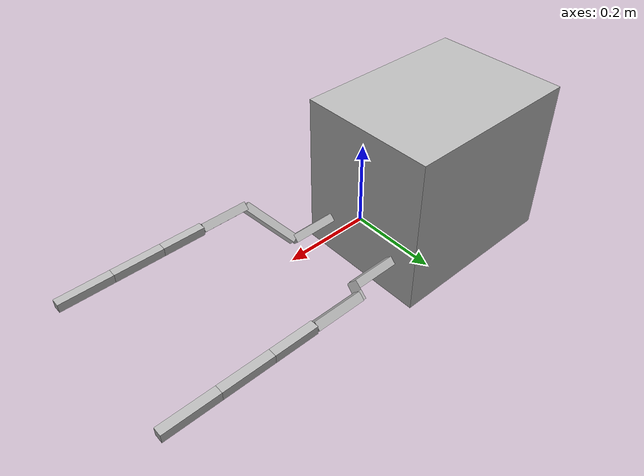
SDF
<?xml version="1.0" ?>
<sdf version="1.5">
  <model name="four_bar_sdf">
    <pose>0 0 0.04  0 0 0</pose>
    <self_collide>true</self_collide>
    <link name="linkROV">
      <pose>-0.2286 0 0 0 0 0</pose>
      <inertial>
        <mass>1.0</mass>
        <inertia>
          <ixx>0.0227</ixx>
          <iyy>0.0306</iyy>
          <izz>0.0269</izz>
          <ixy>0.0</ixy>
          <ixz>0.0</ixz>
          <iyz>0.0</iyz>
        </inertia>
      </inertial>
      <collision name="linkROV_collision">
        <geometry>
          <box>
            <size>0.4572 0.33805 0.39785</size>
          </box>
        </geometry>
      </collision>
      <visual name="linkROV_visual">
        <geometry>
          <box>
            <size>0.4572 0.33805 0.39785</size>
          </box>
        </geometry>
        <material>
          <color rgba="0.3 0.3 0.3 1.0"/>
        </material>
      </visual>
    </link>
    <link name="link1L">
      <pose>0.0575 0.1 -0.1 0.7854 0 0 </pose>
      <inertial>
        <mass>0.575</mass>
        <inertia>
          <ixx>3.8333e-05</ixx>
          <iyy>6.5286e-04</iyy>
          <izz>6.5286e-04</izz>
          <ixy>0.0</ixy>
          <ixz>0.0</ixz>
          <iyz>0.0</iyz>
        </inertia>
      </inertial>
      <collision name="link1L_collision">
        <geometry>
          <box>
            <size>0.115 0.02 0.02</size>
          </box>
        </geometry>
      </collision>
      <visual name="link1L_visual">
        <geometry>
          <box>
            <size>0.115 0.02 0.02</size>
          </box>
        </geometry>
        <material>
          <color rgba="0.3 0.3 0.3 1.0"/>
        </material>
      </visual>
    </link>
    <link name="link2L">
      <pose>0.15 0.14287 -0.057134 0.46365 -0.65906 0.88608 </pose>
      <inertial>
        <mass>0.700</mass>
        <inertia>
          <ixx>4.6667e-05</ixx>
          <iyy>1.1667e-03</iyy>
          <izz>1.1667e-03</izz>
          <ixy>0.0</ixy>
          <ixz>0.0</ixz>
          <iyz>0.0</iyz>
        </inertia>
      </inertial>
      <collision name="link2L_collision">
        <geometry>
          <box>
            <size>0.140 0.02 0.02</size>
          </box>
        </geometry>
      </collision>
      <visual name="link2L_visual">
        <geometry>
          <box>
            <size>0.140 0.02 0.02</size>
          </box>
        </geometry>
        <material>
          <color rgba="0.3 0.3 0.3 1.0"/>
        </material>
      </visual>
    </link>
    <link name="link3L">
      <pose>0.2425 0.18573 -0.014268 0.7854 0 5.5511e-17 </pose>
      <inertial>
        <mass>0.575</mass>
        <inertia>
          <ixx>3.8333e-05</ixx>
          <iyy>6.5286e-04</iyy>
          <izz>6.5286e-04</izz>
          <ixy>0.0</ixy>
          <ixz>0.0</ixz>
          <iyz>0.0</iyz>
        </inertia>
      </inertial>
      <collision name="link3L_collision">
        <geometry>
          <box>
            <size>0.115 0.02 0.02</size>
          </box>
        </geometry>
      </collision>
      <visual name="link3L_visual">
        <geometry>
          <box>
            <size>0.115 0.02 0.02</size>
          </box>
        </geometry>
        <material>
          <color rgba="0.3 0.3 0.3 1.0"/>
        </material>
      </visual>
    </link>
    <link name="link4L">
      <pose>0.35 0.18573 -0.014268 0 0 5.5511e-17 </pose>
      <inertial>
        <mass>0.500</mass>
        <inertia>
          <ixx>3.3333e-05</ixx>
          <iyy>4.3333e-04</iyy>
          <izz>4.3333e-04</izz>
          <ixy>0.0</ixy>
          <ixz>0.0</ixz>
          <iyz>0.0</iyz>
        </inertia>
      </inertial>
      <collision name="link4L_collision">
        <geometry>
          <box>
            <size>0.100 0.02 0.02</size>
          </box>
        </geometry>
      </collision>
      <visual name="link4L_visual">
        <geometry>
          <box>
            <size>0.100 0.02 0.02</size>
          </box>
        </geometry>
        <material>
          <color rgba="0.3 0.3 0.3 1.0"/>
        </material>
      </visual>
    </link>
    <link name="link5L">
      <pose>0.4575 0.18573 -0.014268 0 0 5.5511e-17 </pose>
      <inertial>
        <mass>0.575</mass>
        <inertia>
          <ixx>3.8333e-05</ixx>
          <iyy>6.5286e-04</iyy>
          <izz>6.5286e-04</izz>
          <ixy>0.0</ixy>
          <ixz>0.0</ixz>
          <iyz>0.0</iyz>
        </inertia>
      </inertial>
      <collision name="link5L_collision">
        <geometry>
          <box>
            <size>0.115 0.02 0.02</size>
          </box>
        </geometry>
      </collision>
      <visual name="link5L_visual">
        <geometry>
          <box>
            <size>0.115 0.02 0.02</size>
          </box>
        </geometry>
        <material>
          <color rgba="0.3 0.3 0.3 1.0"/>
        </material>
      </visual>
    </link>
    <link name="link6L">
      <pose>0.575 0.18573 -0.014268 0 0 5.5511e-17 </pose>
      <inertial>
        <mass>0.600</mass>
        <inertia>
          <ixx>4.0000e-05</ixx>
          <iyy>7.4000e-04</iyy>
          <izz>7.4000e-04</izz>
          <ixy>0.0</ixy>
          <ixz>0.0</ixz>
          <iyz>0.0</iyz>
        </inertia>
      </inertial>
      <collision name="link6L_collision">
        <geometry>
          <box>
            <size>0.120 0.02 0.02</size>
          </box>
        </geometry>
      </collision>
      <visual name="link6L_visual">
        <geometry>
          <box>
            <size>0.120 0.02 0.02</size>
          </box>
        </geometry>
        <material>
          <color rgba="0.3 0.3 0.3 1.0"/>
        </material>
      </visual>
    </link>

    <link name="link1R">
      <pose>0.0575 -0.1 -0.1 -0.7854 0 0 </pose>
      <inertial>
        <mass>0.575</mass>
        <inertia>
          <ixx>3.8333e-05</ixx>
          <iyy>6.5286e-04</iyy>
          <izz>6.5286e-04</izz>
          <ixy>0.0</ixy>
          <ixz>0.0</ixz>
          <iyz>0.0</iyz>
        </inertia>
      </inertial>
      <collision name="link1R_collision">
        <geometry>
          <box>
            <size>0.115 0.02 0.02</size>
          </box>
        </geometry>
      </collision>
      <visual name="link1R_visual">
        <geometry>
          <box>
            <size>0.115 0.02 0.02</size>
          </box>
        </geometry>
        <material>
          <color rgba="0.3 0.3 0.3 1.0"/>
        </material>
      </visual>
    </link>
    <link name="link2R">
      <pose>0.15 -0.14287 -0.057134 -0.46365 -0.65906 -0.88608 </pose>
      <inertial>
        <mass>0.700</mass>
        <inertia>
          <ixx>4.6667e-05</ixx>
          <iyy>1.1667e-03</iyy>
          <izz>1.1667e-03</izz>
          <ixy>0.0</ixy>
          <ixz>0.0</ixz>
          <iyz>0.0</iyz>
        </inertia>
      </inertial>
      <collision name="link2R_collision">
        <geometry>
          <box>
            <size>0.140 0.02 0.02</size>
          </box>
        </geometry>
      </collision>
      <visual name="link2R_visual">
        <geometry>
          <box>
            <size>0.140 0.02 0.02</size>
          </box>
        </geometry>
        <material>
          <color rgba="0.3 0.3 0.3 1.0"/>
        </material>
      </visual>
    </link>
    <link name="link3R">
      <pose>0.2425 -0.18573 -0.014268 -0.7854 0 -5.5511e-17 </pose>
      <inertial>
        <mass>0.575</mass>
        <inertia>
          <ixx>3.8333e-05</ixx>
          <iyy>6.5286e-04</iyy>
          <izz>6.5286e-04</izz>
          <ixy>0.0</ixy>
          <ixz>0.0</ixz>
          <iyz>0.0</iyz>
        </inertia>
      </inertial>
      <collision name="link3R_collision">
        <geometry>
          <box>
            <size>0.115 0.02 0.02</size>
          </box>
        </geometry>
      </collision>
      <visual name="link3R_visual">
        <geometry>
          <box>
            <size>0.115 0.02 0.02</size>
          </box>
        </geometry>
        <material>
          <color rgba="0.3 0.3 0.3 1.0"/>
        </material>
      </visual>
    </link>
    <link name="link4R">
      <pose>0.35 -0.18573 -0.014268 0 0 -5.5511e-17 </pose>
      <inertial>
        <mass>0.500</mass>
        <inertia>
          <ixx>3.3333e-05</ixx>
          <iyy>4.3333e-04</iyy>
          <izz>4.3333e-04</izz>
          <ixy>0.0</ixy>
          <ixz>0.0</ixz>
          <iyz>0.0</iyz>
        </inertia>
      </inertial>
      <collision name="link4R_collision">
        <geometry>
          <box>
            <size>0.100 0.02 0.02</size>
          </box>
        </geometry>
      </collision>
      <visual name="link4R_visual">
        <geometry>
          <box>
            <size>0.100 0.02 0.02</size>
          </box>
        </geometry>
        <material>
          <color rgba="0.3 0.3 0.3 1.0"/>
        </material>
      </visual>
    </link>
    <link name="link5R">
      <pose>0.4575 -0.18573 -0.014268 0 0 -5.5511e-17 </pose>
      <inertial>
        <mass>0.575</mass>
        <inertia>
          <ixx>3.8333e-05</ixx>
          <iyy>6.5286e-04</iyy>
          <izz>6.5286e-04</izz>
          <ixy>0.0</ixy>
          <ixz>0.0</ixz>
          <iyz>0.0</iyz>
        </inertia>
      </inertial>
      <collision name="link5R_collision">
        <geometry>
          <box>
            <size>0.115 0.02 0.02</size>
          </box>
        </geometry>
      </collision>
      <visual name="link5R_visual">
        <geometry>
          <box>
            <size>0.115 0.02 0.02</size>
          </box>
        </geometry>
        <material>
          <color rgba="0.3 0.3 0.3 1.0"/>
        </material>
      </visual>
    </link>
    <link name="link6R">
      <pose>0.575 -0.18573 -0.014268 0 0 -5.5511e-17 </pose>
      <inertial>
        <mass>0.600</mass>
        <inertia>
          <ixx>4.0000e-05</ixx>
          <iyy>7.4000e-04</iyy>
          <izz>7.4000e-04</izz>
          <ixy>0.0</ixy>
          <ixz>0.0</ixz>
          <iyz>0.0</iyz>
        </inertia>
      </inertial>
      <collision name="link6R_collision">
        <geometry>
          <box>
            <size>0.120 0.02 0.02</size>
          </box>
        </geometry>
      </collision>
      <visual name="link6R_visual">
        <geometry>
          <box>
            <size>0.120 0.02 0.02</size>
          </box>
        </geometry>
        <material>
          <color rgba="0.3 0.3 0.3 1.0"/>
        </material>
      </visual>
    </link>

    <joint name="joint_gripL" type="fixed">
      <pose>0 0 0 0 0 0</pose>
      <parent>world</parent>
      <child>link6L</child>
    </joint>
    <joint name="joint_1L" type="revolute">
      <pose>0 0 0 0 0 0</pose>
      <parent>linkROV</parent>
      <child>link1L</child>
      <axis>
        <xyz>1 0 0</xyz>
        <dynamics>
          <damping>0.05</damping>
          <friction>0</friction>
          <spring_reference>0</spring_reference>
          <spring_stiffness>10.0</spring_stiffness>
        </dynamics>
      </axis>
    </joint>
    <joint name="joint_2L" type="revolute">
      <pose>-0.07 0 0 0 0 0</pose>
      <parent>link1L</parent>
      <child>link2L</child>
      <axis>
        <xyz>0 0 1</xyz>
        <dynamics>
          <damping>0.05</damping>
          <friction>0</friction>
          <spring_reference>0</spring_reference>
          <spring_stiffness>10.0</spring_stiffness>
        </dynamics>
      </axis>
    </joint>
    <joint name="joint_3L" type="revolute">
      <pose>-0.0575 0 0 0 0 0</pose>
      <parent>link2L</parent>
      <child>link3L</child>
      <axis>
        <xyz>0 0 1</xyz>
        <dynamics>
          <damping>0.05</damping>
          <friction>0</friction>
          <spring_reference>0</spring_reference>
          <spring_stiffness>10.0</spring_stiffness>
        </dynamics>
      </axis>
    </joint>
    <joint name="joint_4L" type="revolute">
      <pose>-0.05 0 0 0 0 0</pose>
      <parent>link3L</parent>
      <child>link4L</child>
      <axis>
        <xyz>1 0 0</xyz>
        <dynamics>
          <damping>0.05</damping>
          <friction>0</friction>
          <spring_reference>0</spring_reference>
          <spring_stiffness>10.0</spring_stiffness>
        </dynamics>
      </axis>
    </joint>
    <joint name="joint_5L" type="revolute">
      <pose>-0.0575 0 0 0 0 0</pose>
      <parent>link4L</parent>
      <child>link5L</child>
      <axis>
        <xyz>0 0 1</xyz>
        <dynamics>
          <damping>0.05</damping>
          <friction>0</friction>
          <spring_reference>0</spring_reference>
          <spring_stiffness>10.0</spring_stiffness>
        </dynamics>
      </axis>
    </joint>
    <joint name="joint_6L" type="revolute">
      <pose>-0.06 0 0 0 0 0</pose>
      <parent>link5L</parent>
      <child>link6L</child>
      <axis>
        <xyz>1 0 0</xyz>
        <dynamics>
          <damping>0.05</damping>
          <friction>0</friction>
          <spring_reference>0</spring_reference>
          <spring_stiffness>10.0</spring_stiffness>
        </dynamics>
      </axis>
    </joint>

    <joint name="joint_gripR" type="fixed">
      <pose>0 0 0 0 0 0</pose>
      <parent>world</parent>
      <child>link6R</child>
    </joint>
    <joint name="joint_1R" type="revolute">
      <pose>0 0 0 0 0 0</pose>
      <parent>linkROV</parent>
      <child>link1R</child>
      <axis>
        <xyz>1 0 0</xyz>
        <dynamics>
          <damping>0.05</damping>
          <friction>0</friction>
          <spring_reference>0</spring_reference>
          <spring_stiffness>10.0</spring_stiffness>
        </dynamics>
      </axis>
    </joint>
    <joint name="joint_2R" type="revolute">
      <pose>-0.07 0 0 0 0 0</pose>
      <parent>link1R</parent>
      <child>link2R</child>
      <axis>
        <xyz>0 0 1</xyz>
        <dynamics>
          <damping>0.05</damping>
          <friction>0</friction>
          <spring_reference>0</spring_reference>
          <spring_stiffness>10.0</spring_stiffness>
        </dynamics>
      </axis>
    </joint>
    <joint name="joint_3R" type="revolute">
      <pose>-0.0575 0 0 0 0 0</pose>
      <parent>link2R</parent>
      <child>link3R</child>
      <axis>
        <xyz>0 0 1</xyz>
        <dynamics>
          <damping>0.05</damping>
          <friction>0</friction>
          <spring_reference>0</spring_reference>
          <spring_stiffness>10.0</spring_stiffness>
        </dynamics>
      </axis>
    </joint>
    <joint name="joint_4R" type="revolute">
      <pose>-0.05 0 0 0 0 0</pose>
      <parent>link3R</parent>
      <child>link4R</child>
      <axis>
        <xyz>1 0 0</xyz>
        <dynamics>
          <damping>0.05</damping>
          <friction>0</friction>
          <spring_reference>0</spring_reference>
          <spring_stiffness>10.0</spring_stiffness>
        </dynamics>
      </axis>
    </joint>
    <joint name="joint_5R" type="revolute">
      <pose>-0.0575 0 0 0 0 0</pose>
      <parent>link4R</parent>
      <child>link5R</child>
      <axis>
        <xyz>0 0 1</xyz>
        <dynamics>
          <damping>0.05</damping>
          <friction>0</friction>
          <spring_reference>0</spring_reference>
          <spring_stiffness>10.0</spring_stiffness>
        </dynamics>
      </axis>
    </joint>
    <joint name="joint_6R" type="revolute">
      <pose>-0.06 0 0 0 0 0</pose>
      <parent>link5R</parent>
      <child>link6R</child>
      <axis>
        <xyz>1 0 0</xyz>
        <dynamics>
          <damping>0.05</damping>
          <friction>0</friction>
          <spring_reference>0</spring_reference>
          <spring_stiffness>10.0</spring_stiffness>
        </dynamics>
      </axis>
    </joint>
  </model>
</sdf>
